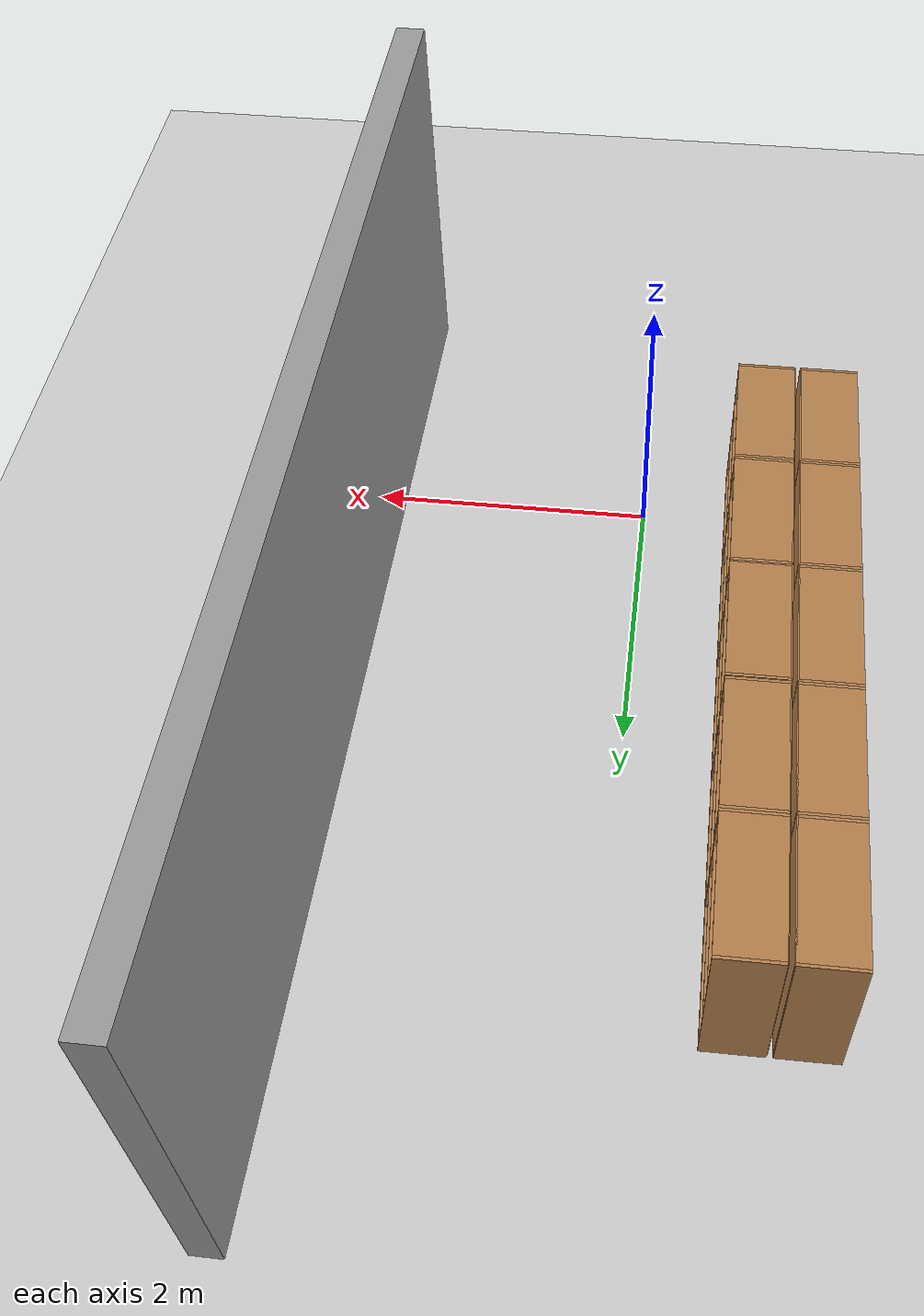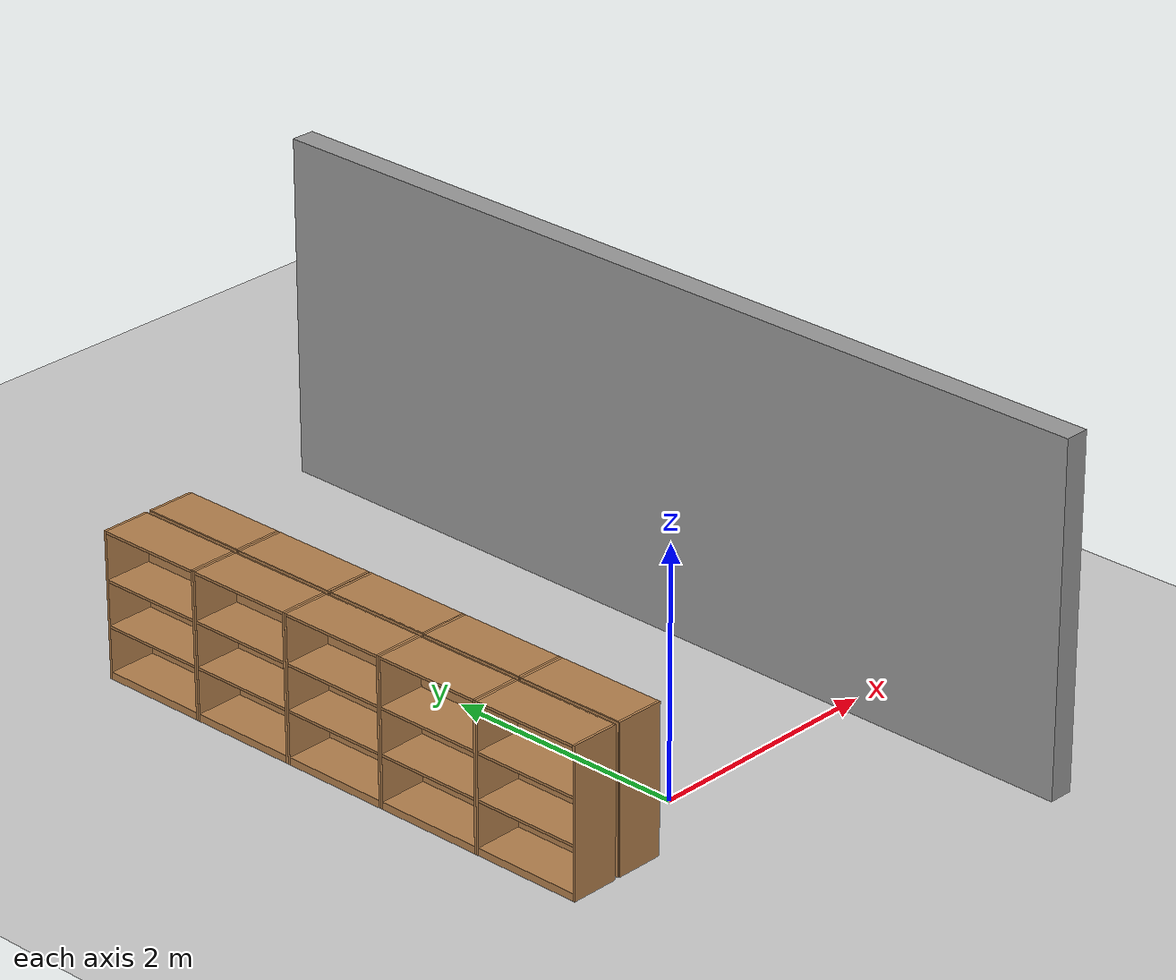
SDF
<sdf version="1.4">
 <world name="default">
  <model name="ground_plane">
   <static>1</static>
   <link name="link">
    <collision name="collision">
     <geometry><plane><normal>0 0 1</normal><size>100 100</size></plane></geometry>
     <surface><friction><ode><mu>100</mu><mu2>50</mu2></ode></friction></surface>
    </collision>
    <visual name="visual">
     <cast_shadows>0</cast_shadows>
     <geometry><plane><normal>0 0 1</normal><size>100 100</size></plane></geometry>
     <material>
      <script><uri>file://media/materials/scripts/gazebo.material</uri><name>Gazebo/Grey</name></script>
     </material>
    </visual>
    <velocity_decay><linear>0</linear><angular>0</angular></velocity_decay>
   </link>
  </model>
  <model name="bookshelf">
   <static>0</static>
   <link name="link">
    <inertial><mass>1</mass></inertial>
    <collision name="back">
     <pose>0 0.005 0.6 0 -0 0</pose>
     <geometry><box><size>0.9 0.01 1.2</size></box></geometry>
    </collision>
    <visual name="visual1">
     <pose>0 0.005 0.6 0 -0 0</pose>
     <geometry><box><size>0.9 0.01 1.2</size></box></geometry>
     <material>
      <script><uri>file://media/materials/scripts/gazebo.material</uri><name>Gazebo/Wood</name></script>
     </material>
    </visual>
    <collision name="left_side">
     <pose>0.45 -0.195 0.6 0 -0 0</pose>
     <geometry><box><size>0.02 0.4 1.2</size></box></geometry>
    </collision>
    <visual name="visual2">
     <pose>0.45 -0.195 0.6 0 -0 0</pose>
     <geometry><box><size>0.02 0.4 1.2</size></box></geometry>
     <material>
      <script><uri>file://media/materials/scripts/gazebo.material</uri><name>Gazebo/Wood</name></script>
     </material>
    </visual>
    <collision name="right_side">
     <pose>-0.45 -0.195 0.6 0 -0 0</pose>
     <geometry><box><size>0.02 0.4 1.2</size></box></geometry>
    </collision>
    <visual name="visual3">
     <pose>-0.45 -0.195 0.6 0 -0 0</pose>
     <geometry><box><size>0.02 0.4 1.2</size></box></geometry>
     <material>
      <script><uri>file://media/materials/scripts/gazebo.material</uri><name>Gazebo/Wood</name></script>
     </material>
    </visual>
    <collision name="bottom">
     <pose>0 -0.195 0.03 0 -0 0</pose>
     <geometry><box><size>0.88 0.4 0.06</size></box></geometry>
    </collision>
    <visual name="visual4">
     <pose>0 -0.195 0.03 0 -0 0</pose>
     <geometry><box><size>0.88 0.4 0.06</size></box></geometry>
     <material>
      <script><uri>file://media/materials/scripts/gazebo.material</uri><name>Gazebo/Wood</name></script>
     </material>
    </visual>
    <collision name="top">
     <pose>0 -0.195 1.19 0 -0 0</pose>
     <geometry><box><size>0.88 0.4 0.02</size></box></geometry>
    </collision>
    <visual name="visual5">
     <pose>0 -0.195 1.19 0 -0 0</pose>
     <geometry><box><size>0.88 0.4 0.02</size></box></geometry>
     <material>
      <script><uri>file://media/materials/scripts/gazebo.material</uri><name>Gazebo/Wood</name></script>
     </material>
    </visual>
    <collision name="low_shelf">
     <pose>0 -0.195 0.43 0 -0 0</pose>
     <geometry><box><size>0.88 0.4 0.02</size></box></geometry>
    </collision>
    <visual name="visual6">
     <pose>0 -0.195 0.43 0 -0 0</pose>
     <geometry><box><size>0.88 0.4 0.02</size></box></geometry>
     <material>
      <script><uri>file://media/materials/scripts/gazebo.material</uri><name>Gazebo/Wood</name></script>
     </material>
    </visual>
    <collision name="high_shelf">
     <pose>0 -0.195 0.8 0 -0 0</pose>
     <geometry><box><size>0.88 0.4 0.02</size></box></geometry>
    </collision>
    <visual name="visual7">
     <pose>0 -0.195 0.8 0 -0 0</pose>
     <geometry><box><size>0.88 0.4 0.02</size></box></geometry>
     <material>
      <script><uri>file://media/materials/scripts/gazebo.material</uri><name>Gazebo/Wood</name></script>
     </material>
    </visual>
    <velocity_decay><linear>0</linear><angular>0</angular></velocity_decay>
   </link>
   <pose>-1 0 0 0 -0 1.5708</pose>
  </model>
  <model name="bookshelf_0">
   <static>1</static>
   <link name="link">
    <inertial><mass>1</mass></inertial>
    <collision name="back">
     <pose>0 0.005 0.6 0 -0 0</pose>
     <geometry><box><size>0.9 0.01 1.2</size></box></geometry>
    </collision>
    <visual name="visual1">
     <pose>0 0.005 0.6 0 -0 0</pose>
     <geometry><box><size>0.9 0.01 1.2</size></box></geometry>
     <material>
      <script><uri>file://media/materials/scripts/gazebo.material</uri><name>Gazebo/Wood</name></script>
     </material>
    </visual>
    <collision name="left_side">
     <pose>0.45 -0.195 0.6 0 -0 0</pose>
     <geometry><box><size>0.02 0.4 1.2</size></box></geometry>
    </collision>
    <visual name="visual2">
     <pose>0.45 -0.195 0.6 0 -0 0</pose>
     <geometry><box><size>0.02 0.4 1.2</size></box></geometry>
     <material>
      <script><uri>file://media/materials/scripts/gazebo.material</uri><name>Gazebo/Wood</name></script>
     </material>
    </visual>
    <collision name="right_side">
     <pose>-0.45 -0.195 0.6 0 -0 0</pose>
     <geometry><box><size>0.02 0.4 1.2</size></box></geometry>
    </collision>
    <visual name="visual3">
     <pose>-0.45 -0.195 0.6 0 -0 0</pose>
     <geometry><box><size>0.02 0.4 1.2</size></box></geometry>
     <material>
      <script><uri>file://media/materials/scripts/gazebo.material</uri><name>Gazebo/Wood</name></script>
     </material>
    </visual>
    <collision name="bottom">
     <pose>0 -0.195 0.03 0 -0 0</pose>
     <geometry><box><size>0.88 0.4 0.06</size></box></geometry>
    </collision>
    <visual name="visual4">
     <pose>0 -0.195 0.03 0 -0 0</pose>
     <geometry><box><size>0.88 0.4 0.06</size></box></geometry>
     <material>
      <script><uri>file://media/materials/scripts/gazebo.material</uri><name>Gazebo/Wood</name></script>
     </material>
    </visual>
    <collision name="top">
     <pose>0 -0.195 1.19 0 -0 0</pose>
     <geometry><box><size>0.88 0.4 0.02</size></box></geometry>
    </collision>
    <visual name="visual5">
     <pose>0 -0.195 1.19 0 -0 0</pose>
     <geometry><box><size>0.88 0.4 0.02</size></box></geometry>
     <material>
      <script><uri>file://media/materials/scripts/gazebo.material</uri><name>Gazebo/Wood</name></script>
     </material>
    </visual>
    <collision name="low_shelf">
     <pose>0 -0.195 0.43 0 -0 0</pose>
     <geometry><box><size>0.88 0.4 0.02</size></box></geometry>
    </collision>
    <visual name="visual6">
     <pose>0 -0.195 0.43 0 -0 0</pose>
     <geometry><box><size>0.88 0.4 0.02</size></box></geometry>
     <material>
      <script><uri>file://media/materials/scripts/gazebo.material</uri><name>Gazebo/Wood</name></script>
     </material>
    </visual>
    <collision name="high_shelf">
     <pose>0 -0.195 0.8 0 -0 0</pose>
     <geometry><box><size>0.88 0.4 0.02</size></box></geometry>
    </collision>
    <visual name="visual7">
     <pose>0 -0.195 0.8 0 -0 0</pose>
     <geometry><box><size>0.88 0.4 0.02</size></box></geometry>
     <material>
      <script><uri>file://media/materials/scripts/gazebo.material</uri><name>Gazebo/Wood</name></script>
     </material>
    </visual>
    <velocity_decay><linear>0</linear><angular>0</angular></velocity_decay>
   </link>
   <pose>-1 0.918842 0 0 -0 1.5708</pose>
  </model>
  <model name="bookshelf_1">
   <static>1</static>
   <link name="link">
    <inertial><mass>1</mass></inertial>
    <collision name="back">
     <pose>0 0.005 0.6 0 -0 0</pose>
     <geometry><box><size>0.9 0.01 1.2</size></box></geometry>
    </collision>
    <visual name="visual1">
     <pose>0 0.005 0.6 0 -0 0</pose>
     <geometry><box><size>0.9 0.01 1.2</size></box></geometry>
     <material>
      <script><uri>file://media/materials/scripts/gazebo.material</uri><name>Gazebo/Wood</name></script>
     </material>
    </visual>
    <collision name="left_side">
     <pose>0.45 -0.195 0.6 0 -0 0</pose>
     <geometry><box><size>0.02 0.4 1.2</size></box></geometry>
    </collision>
    <visual name="visual2">
     <pose>0.45 -0.195 0.6 0 -0 0</pose>
     <geometry><box><size>0.02 0.4 1.2</size></box></geometry>
     <material>
      <script><uri>file://media/materials/scripts/gazebo.material</uri><name>Gazebo/Wood</name></script>
     </material>
    </visual>
    <collision name="right_side">
     <pose>-0.45 -0.195 0.6 0 -0 0</pose>
     <geometry><box><size>0.02 0.4 1.2</size></box></geometry>
    </collision>
    <visual name="visual3">
     <pose>-0.45 -0.195 0.6 0 -0 0</pose>
     <geometry><box><size>0.02 0.4 1.2</size></box></geometry>
     <material>
      <script><uri>file://media/materials/scripts/gazebo.material</uri><name>Gazebo/Wood</name></script>
     </material>
    </visual>
    <collision name="bottom">
     <pose>0 -0.195 0.03 0 -0 0</pose>
     <geometry><box><size>0.88 0.4 0.06</size></box></geometry>
    </collision>
    <visual name="visual4">
     <pose>0 -0.195 0.03 0 -0 0</pose>
     <geometry><box><size>0.88 0.4 0.06</size></box></geometry>
     <material>
      <script><uri>file://media/materials/scripts/gazebo.material</uri><name>Gazebo/Wood</name></script>
     </material>
    </visual>
    <collision name="top">
     <pose>0 -0.195 1.19 0 -0 0</pose>
     <geometry><box><size>0.88 0.4 0.02</size></box></geometry>
    </collision>
    <visual name="visual5">
     <pose>0 -0.195 1.19 0 -0 0</pose>
     <geometry><box><size>0.88 0.4 0.02</size></box></geometry>
     <material>
      <script><uri>file://media/materials/scripts/gazebo.material</uri><name>Gazebo/Wood</name></script>
     </material>
    </visual>
    <collision name="low_shelf">
     <pose>0 -0.195 0.43 0 -0 0</pose>
     <geometry><box><size>0.88 0.4 0.02</size></box></geometry>
    </collision>
    <visual name="visual6">
     <pose>0 -0.195 0.43 0 -0 0</pose>
     <geometry><box><size>0.88 0.4 0.02</size></box></geometry>
     <material>
      <script><uri>file://media/materials/scripts/gazebo.material</uri><name>Gazebo/Wood</name></script>
     </material>
    </visual>
    <collision name="high_shelf">
     <pose>0 -0.195 0.8 0 -0 0</pose>
     <geometry><box><size>0.88 0.4 0.02</size></box></geometry>
    </collision>
    <visual name="visual7">
     <pose>0 -0.195 0.8 0 -0 0</pose>
     <geometry><box><size>0.88 0.4 0.02</size></box></geometry>
     <material>
      <script><uri>file://media/materials/scripts/gazebo.material</uri><name>Gazebo/Wood</name></script>
     </material>
    </visual>
    <velocity_decay><linear>0</linear><angular>0</angular></velocity_decay>
   </link>
   <pose>-1 1.83131 0 0 -0 1.5708</pose>
  </model>
  <model name="bookshelf_10">
   <static>1</static>
   <link name="link">
    <inertial><mass>1</mass></inertial>
    <collision name="back">
     <pose>0 0.005 0.6 0 -0 0</pose>
     <geometry><box><size>0.9 0.01 1.2</size></box></geometry>
    </collision>
    <visual name="visual1">
     <pose>0 0.005 0.6 0 -0 0</pose>
     <geometry><box><size>0.9 0.01 1.2</size></box></geometry>
     <material>
      <script><uri>file://media/materials/scripts/gazebo.material</uri><name>Gazebo/Wood</name></script>
     </material>
    </visual>
    <collision name="left_side">
     <pose>0.45 -0.195 0.6 0 -0 0</pose>
     <geometry><box><size>0.02 0.4 1.2</size></box></geometry>
    </collision>
    <visual name="visual2">
     <pose>0.45 -0.195 0.6 0 -0 0</pose>
     <geometry><box><size>0.02 0.4 1.2</size></box></geometry>
     <material>
      <script><uri>file://media/materials/scripts/gazebo.material</uri><name>Gazebo/Wood</name></script>
     </material>
    </visual>
    <collision name="right_side">
     <pose>-0.45 -0.195 0.6 0 -0 0</pose>
     <geometry><box><size>0.02 0.4 1.2</size></box></geometry>
    </collision>
    <visual name="visual3">
     <pose>-0.45 -0.195 0.6 0 -0 0</pose>
     <geometry><box><size>0.02 0.4 1.2</size></box></geometry>
     <material>
      <script><uri>file://media/materials/scripts/gazebo.material</uri><name>Gazebo/Wood</name></script>
     </material>
    </visual>
    <collision name="bottom">
     <pose>0 -0.195 0.03 0 -0 0</pose>
     <geometry><box><size>0.88 0.4 0.06</size></box></geometry>
    </collision>
    <visual name="visual4">
     <pose>0 -0.195 0.03 0 -0 0</pose>
     <geometry><box><size>0.88 0.4 0.06</size></box></geometry>
     <material>
      <script><uri>file://media/materials/scripts/gazebo.material</uri><name>Gazebo/Wood</name></script>
     </material>
    </visual>
    <collision name="top">
     <pose>0 -0.195 1.19 0 -0 0</pose>
     <geometry><box><size>0.88 0.4 0.02</size></box></geometry>
    </collision>
    <visual name="visual5">
     <pose>0 -0.195 1.19 0 -0 0</pose>
     <geometry><box><size>0.88 0.4 0.02</size></box></geometry>
     <material>
      <script><uri>file://media/materials/scripts/gazebo.material</uri><name>Gazebo/Wood</name></script>
     </material>
    </visual>
    <collision name="low_shelf">
     <pose>0 -0.195 0.43 0 -0 0</pose>
     <geometry><box><size>0.88 0.4 0.02</size></box></geometry>
    </collision>
    <visual name="visual6">
     <pose>0 -0.195 0.43 0 -0 0</pose>
     <geometry><box><size>0.88 0.4 0.02</size></box></geometry>
     <material>
      <script><uri>file://media/materials/scripts/gazebo.material</uri><name>Gazebo/Wood</name></script>
     </material>
    </visual>
    <collision name="high_shelf">
     <pose>0 -0.195 0.8 0 -0 0</pose>
     <geometry><box><size>0.88 0.4 0.02</size></box></geometry>
    </collision>
    <visual name="visual7">
     <pose>0 -0.195 0.8 0 -0 0</pose>
     <geometry><box><size>0.88 0.4 0.02</size></box></geometry>
     <material>
      <script><uri>file://media/materials/scripts/gazebo.material</uri><name>Gazebo/Wood</name></script>
     </material>
    </visual>
    <velocity_decay><linear>0</linear><angular>0</angular></velocity_decay>
   </link>
   <pose>-1 2.7564 0 0 -0 1.5708</pose>
  </model>
  <model name="bookshelf_11">
   <static>1</static>
   <link name="link">
    <inertial><mass>1</mass></inertial>
    <collision name="back">
     <pose>0 0.005 0.6 0 -0 0</pose>
     <geometry><box><size>0.9 0.01 1.2</size></box></geometry>
    </collision>
    <visual name="visual1">
     <pose>0 0.005 0.6 0 -0 0</pose>
     <geometry><box><size>0.9 0.01 1.2</size></box></geometry>
     <material>
      <script><uri>file://media/materials/scripts/gazebo.material</uri><name>Gazebo/Wood</name></script>
     </material>
    </visual>
    <collision name="left_side">
     <pose>0.45 -0.195 0.6 0 -0 0</pose>
     <geometry><box><size>0.02 0.4 1.2</size></box></geometry>
    </collision>
    <visual name="visual2">
     <pose>0.45 -0.195 0.6 0 -0 0</pose>
     <geometry><box><size>0.02 0.4 1.2</size></box></geometry>
     <material>
      <script><uri>file://media/materials/scripts/gazebo.material</uri><name>Gazebo/Wood</name></script>
     </material>
    </visual>
    <collision name="right_side">
     <pose>-0.45 -0.195 0.6 0 -0 0</pose>
     <geometry><box><size>0.02 0.4 1.2</size></box></geometry>
    </collision>
    <visual name="visual3">
     <pose>-0.45 -0.195 0.6 0 -0 0</pose>
     <geometry><box><size>0.02 0.4 1.2</size></box></geometry>
     <material>
      <script><uri>file://media/materials/scripts/gazebo.material</uri><name>Gazebo/Wood</name></script>
     </material>
    </visual>
    <collision name="bottom">
     <pose>0 -0.195 0.03 0 -0 0</pose>
     <geometry><box><size>0.88 0.4 0.06</size></box></geometry>
    </collision>
    <visual name="visual4">
     <pose>0 -0.195 0.03 0 -0 0</pose>
     <geometry><box><size>0.88 0.4 0.06</size></box></geometry>
     <material>
      <script><uri>file://media/materials/scripts/gazebo.material</uri><name>Gazebo/Wood</name></script>
     </material>
    </visual>
    <collision name="top">
     <pose>0 -0.195 1.19 0 -0 0</pose>
     <geometry><box><size>0.88 0.4 0.02</size></box></geometry>
    </collision>
    <visual name="visual5">
     <pose>0 -0.195 1.19 0 -0 0</pose>
     <geometry><box><size>0.88 0.4 0.02</size></box></geometry>
     <material>
      <script><uri>file://media/materials/scripts/gazebo.material</uri><name>Gazebo/Wood</name></script>
     </material>
    </visual>
    <collision name="low_shelf">
     <pose>0 -0.195 0.43 0 -0 0</pose>
     <geometry><box><size>0.88 0.4 0.02</size></box></geometry>
    </collision>
    <visual name="visual6">
     <pose>0 -0.195 0.43 0 -0 0</pose>
     <geometry><box><size>0.88 0.4 0.02</size></box></geometry>
     <material>
      <script><uri>file://media/materials/scripts/gazebo.material</uri><name>Gazebo/Wood</name></script>
     </material>
    </visual>
    <collision name="high_shelf">
     <pose>0 -0.195 0.8 0 -0 0</pose>
     <geometry><box><size>0.88 0.4 0.02</size></box></geometry>
    </collision>
    <visual name="visual7">
     <pose>0 -0.195 0.8 0 -0 0</pose>
     <geometry><box><size>0.88 0.4 0.02</size></box></geometry>
     <material>
      <script><uri>file://media/materials/scripts/gazebo.material</uri><name>Gazebo/Wood</name></script>
     </material>
    </visual>
    <velocity_decay><linear>0</linear><angular>0</angular></velocity_decay>
   </link>
   <pose>-1 3.6752 0 0 -0 1.5708</pose>
  </model>
  <model name="bookshelf_12">
   <static>1</static>
   <link name="link">
    <inertial><mass>1</mass></inertial>
    <collision name="back">
     <pose>0 0.005 0.6 0 -0 0</pose>
     <geometry><box><size>0.9 0.01 1.2</size></box></geometry>
    </collision>
    <visual name="visual1">
     <pose>0 0.005 0.6 0 -0 0</pose>
     <geometry><box><size>0.9 0.01 1.2</size></box></geometry>
     <material>
      <script><uri>file://media/materials/scripts/gazebo.material</uri><name>Gazebo/Wood</name></script>
     </material>
    </visual>
    <collision name="left_side">
     <pose>0.45 -0.195 0.6 0 -0 0</pose>
     <geometry><box><size>0.02 0.4 1.2</size></box></geometry>
    </collision>
    <visual name="visual2">
     <pose>0.45 -0.195 0.6 0 -0 0</pose>
     <geometry><box><size>0.02 0.4 1.2</size></box></geometry>
     <material>
      <script><uri>file://media/materials/scripts/gazebo.material</uri><name>Gazebo/Wood</name></script>
     </material>
    </visual>
    <collision name="right_side">
     <pose>-0.45 -0.195 0.6 0 -0 0</pose>
     <geometry><box><size>0.02 0.4 1.2</size></box></geometry>
    </collision>
    <visual name="visual3">
     <pose>-0.45 -0.195 0.6 0 -0 0</pose>
     <geometry><box><size>0.02 0.4 1.2</size></box></geometry>
     <material>
      <script><uri>file://media/materials/scripts/gazebo.material</uri><name>Gazebo/Wood</name></script>
     </material>
    </visual>
    <collision name="bottom">
     <pose>0 -0.195 0.03 0 -0 0</pose>
     <geometry><box><size>0.88 0.4 0.06</size></box></geometry>
    </collision>
    <visual name="visual4">
     <pose>0 -0.195 0.03 0 -0 0</pose>
     <geometry><box><size>0.88 0.4 0.06</size></box></geometry>
     <material>
      <script><uri>file://media/materials/scripts/gazebo.material</uri><name>Gazebo/Wood</name></script>
     </material>
    </visual>
    <collision name="top">
     <pose>0 -0.195 1.19 0 -0 0</pose>
     <geometry><box><size>0.88 0.4 0.02</size></box></geometry>
    </collision>
    <visual name="visual5">
     <pose>0 -0.195 1.19 0 -0 0</pose>
     <geometry><box><size>0.88 0.4 0.02</size></box></geometry>
     <material>
      <script><uri>file://media/materials/scripts/gazebo.material</uri><name>Gazebo/Wood</name></script>
     </material>
    </visual>
    <collision name="low_shelf">
     <pose>0 -0.195 0.43 0 -0 0</pose>
     <geometry><box><size>0.88 0.4 0.02</size></box></geometry>
    </collision>
    <visual name="visual6">
     <pose>0 -0.195 0.43 0 -0 0</pose>
     <geometry><box><size>0.88 0.4 0.02</size></box></geometry>
     <material>
      <script><uri>file://media/materials/scripts/gazebo.material</uri><name>Gazebo/Wood</name></script>
     </material>
    </visual>
    <collision name="high_shelf">
     <pose>0 -0.195 0.8 0 -0 0</pose>
     <geometry><box><size>0.88 0.4 0.02</size></box></geometry>
    </collision>
    <visual name="visual7">
     <pose>0 -0.195 0.8 0 -0 0</pose>
     <geometry><box><size>0.88 0.4 0.02</size></box></geometry>
     <material>
      <script><uri>file://media/materials/scripts/gazebo.material</uri><name>Gazebo/Wood</name></script>
     </material>
    </visual>
    <velocity_decay><linear>0</linear><angular>0</angular></velocity_decay>
   </link>
   <pose>-1.04916 0 0 0 0 -1.5708</pose>
  </model>
  <model name="bookshelf_13">
   <static>1</static>
   <link name="link">
    <inertial><mass>1</mass></inertial>
    <collision name="back">
     <pose>0 0.005 0.6 0 -0 0</pose>
     <geometry><box><size>0.9 0.01 1.2</size></box></geometry>
    </collision>
    <visual name="visual1">
     <pose>0 0.005 0.6 0 -0 0</pose>
     <geometry><box><size>0.9 0.01 1.2</size></box></geometry>
     <material>
      <script><uri>file://media/materials/scripts/gazebo.material</uri><name>Gazebo/Wood</name></script>
     </material>
    </visual>
    <collision name="left_side">
     <pose>0.45 -0.195 0.6 0 -0 0</pose>
     <geometry><box><size>0.02 0.4 1.2</size></box></geometry>
    </collision>
    <visual name="visual2">
     <pose>0.45 -0.195 0.6 0 -0 0</pose>
     <geometry><box><size>0.02 0.4 1.2</size></box></geometry>
     <material>
      <script><uri>file://media/materials/scripts/gazebo.material</uri><name>Gazebo/Wood</name></script>
     </material>
    </visual>
    <collision name="right_side">
     <pose>-0.45 -0.195 0.6 0 -0 0</pose>
     <geometry><box><size>0.02 0.4 1.2</size></box></geometry>
    </collision>
    <visual name="visual3">
     <pose>-0.45 -0.195 0.6 0 -0 0</pose>
     <geometry><box><size>0.02 0.4 1.2</size></box></geometry>
     <material>
      <script><uri>file://media/materials/scripts/gazebo.material</uri><name>Gazebo/Wood</name></script>
     </material>
    </visual>
    <collision name="bottom">
     <pose>0 -0.195 0.03 0 -0 0</pose>
     <geometry><box><size>0.88 0.4 0.06</size></box></geometry>
    </collision>
    <visual name="visual4">
     <pose>0 -0.195 0.03 0 -0 0</pose>
     <geometry><box><size>0.88 0.4 0.06</size></box></geometry>
     <material>
      <script><uri>file://media/materials/scripts/gazebo.material</uri><name>Gazebo/Wood</name></script>
     </material>
    </visual>
    <collision name="top">
     <pose>0 -0.195 1.19 0 -0 0</pose>
     <geometry><box><size>0.88 0.4 0.02</size></box></geometry>
    </collision>
    <visual name="visual5">
     <pose>0 -0.195 1.19 0 -0 0</pose>
     <geometry><box><size>0.88 0.4 0.02</size></box></geometry>
     <material>
      <script><uri>file://media/materials/scripts/gazebo.material</uri><name>Gazebo/Wood</name></script>
     </material>
    </visual>
    <collision name="low_shelf">
     <pose>0 -0.195 0.43 0 -0 0</pose>
     <geometry><box><size>0.88 0.4 0.02</size></box></geometry>
    </collision>
    <visual name="visual6">
     <pose>0 -0.195 0.43 0 -0 0</pose>
     <geometry><box><size>0.88 0.4 0.02</size></box></geometry>
     <material>
      <script><uri>file://media/materials/scripts/gazebo.material</uri><name>Gazebo/Wood</name></script>
     </material>
    </visual>
    <collision name="high_shelf">
     <pose>0 -0.195 0.8 0 -0 0</pose>
     <geometry><box><size>0.88 0.4 0.02</size></box></geometry>
    </collision>
    <visual name="visual7">
     <pose>0 -0.195 0.8 0 -0 0</pose>
     <geometry><box><size>0.88 0.4 0.02</size></box></geometry>
     <material>
      <script><uri>file://media/materials/scripts/gazebo.material</uri><name>Gazebo/Wood</name></script>
     </material>
    </visual>
    <velocity_decay><linear>0</linear><angular>0</angular></velocity_decay>
   </link>
   <pose>-1.04916 0.9188 0 0 0 -1.5708</pose>
  </model>
  <model name="bookshelf_14">
   <static>1</static>
   <link name="link">
    <inertial><mass>1</mass></inertial>
    <collision name="back">
     <pose>0 0.005 0.6 0 -0 0</pose>
     <geometry><box><size>0.9 0.01 1.2</size></box></geometry>
    </collision>
    <visual name="visual1">
     <pose>0 0.005 0.6 0 -0 0</pose>
     <geometry><box><size>0.9 0.01 1.2</size></box></geometry>
     <material>
      <script><uri>file://media/materials/scripts/gazebo.material</uri><name>Gazebo/Wood</name></script>
     </material>
    </visual>
    <collision name="left_side">
     <pose>0.45 -0.195 0.6 0 -0 0</pose>
     <geometry><box><size>0.02 0.4 1.2</size></box></geometry>
    </collision>
    <visual name="visual2">
     <pose>0.45 -0.195 0.6 0 -0 0</pose>
     <geometry><box><size>0.02 0.4 1.2</size></box></geometry>
     <material>
      <script><uri>file://media/materials/scripts/gazebo.material</uri><name>Gazebo/Wood</name></script>
     </material>
    </visual>
    <collision name="right_side">
     <pose>-0.45 -0.195 0.6 0 -0 0</pose>
     <geometry><box><size>0.02 0.4 1.2</size></box></geometry>
    </collision>
    <visual name="visual3">
     <pose>-0.45 -0.195 0.6 0 -0 0</pose>
     <geometry><box><size>0.02 0.4 1.2</size></box></geometry>
     <material>
      <script><uri>file://media/materials/scripts/gazebo.material</uri><name>Gazebo/Wood</name></script>
     </material>
    </visual>
    <collision name="bottom">
     <pose>0 -0.195 0.03 0 -0 0</pose>
     <geometry><box><size>0.88 0.4 0.06</size></box></geometry>
    </collision>
    <visual name="visual4">
     <pose>0 -0.195 0.03 0 -0 0</pose>
     <geometry><box><size>0.88 0.4 0.06</size></box></geometry>
     <material>
      <script><uri>file://media/materials/scripts/gazebo.material</uri><name>Gazebo/Wood</name></script>
     </material>
    </visual>
    <collision name="top">
     <pose>0 -0.195 1.19 0 -0 0</pose>
     <geometry><box><size>0.88 0.4 0.02</size></box></geometry>
    </collision>
    <visual name="visual5">
     <pose>0 -0.195 1.19 0 -0 0</pose>
     <geometry><box><size>0.88 0.4 0.02</size></box></geometry>
     <material>
      <script><uri>file://media/materials/scripts/gazebo.material</uri><name>Gazebo/Wood</name></script>
     </material>
    </visual>
    <collision name="low_shelf">
     <pose>0 -0.195 0.43 0 -0 0</pose>
     <geometry><box><size>0.88 0.4 0.02</size></box></geometry>
    </collision>
    <visual name="visual6">
     <pose>0 -0.195 0.43 0 -0 0</pose>
     <geometry><box><size>0.88 0.4 0.02</size></box></geometry>
     <material>
      <script><uri>file://media/materials/scripts/gazebo.material</uri><name>Gazebo/Wood</name></script>
     </material>
    </visual>
    <collision name="high_shelf">
     <pose>0 -0.195 0.8 0 -0 0</pose>
     <geometry><box><size>0.88 0.4 0.02</size></box></geometry>
    </collision>
    <visual name="visual7">
     <pose>0 -0.195 0.8 0 -0 0</pose>
     <geometry><box><size>0.88 0.4 0.02</size></box></geometry>
     <material>
      <script><uri>file://media/materials/scripts/gazebo.material</uri><name>Gazebo/Wood</name></script>
     </material>
    </visual>
    <velocity_decay><linear>0</linear><angular>0</angular></velocity_decay>
   </link>
   <pose>-1.04916 1.8376 0 0 0 -1.5708</pose>
  </model>
  <model name="bookshelf_15">
   <static>1</static>
   <link name="link">
    <inertial><mass>1</mass></inertial>
    <collision name="back">
     <pose>0 0.005 0.6 0 -0 0</pose>
     <geometry><box><size>0.9 0.01 1.2</size></box></geometry>
    </collision>
    <visual name="visual1">
     <pose>0 0.005 0.6 0 -0 0</pose>
     <geometry><box><size>0.9 0.01 1.2</size></box></geometry>
     <material>
      <script><uri>file://media/materials/scripts/gazebo.material</uri><name>Gazebo/Wood</name></script>
     </material>
    </visual>
    <collision name="left_side">
     <pose>0.45 -0.195 0.6 0 -0 0</pose>
     <geometry><box><size>0.02 0.4 1.2</size></box></geometry>
    </collision>
    <visual name="visual2">
     <pose>0.45 -0.195 0.6 0 -0 0</pose>
     <geometry><box><size>0.02 0.4 1.2</size></box></geometry>
     <material>
      <script><uri>file://media/materials/scripts/gazebo.material</uri><name>Gazebo/Wood</name></script>
     </material>
    </visual>
    <collision name="right_side">
     <pose>-0.45 -0.195 0.6 0 -0 0</pose>
     <geometry><box><size>0.02 0.4 1.2</size></box></geometry>
    </collision>
    <visual name="visual3">
     <pose>-0.45 -0.195 0.6 0 -0 0</pose>
     <geometry><box><size>0.02 0.4 1.2</size></box></geometry>
     <material>
      <script><uri>file://media/materials/scripts/gazebo.material</uri><name>Gazebo/Wood</name></script>
     </material>
    </visual>
    <collision name="bottom">
     <pose>0 -0.195 0.03 0 -0 0</pose>
     <geometry><box><size>0.88 0.4 0.06</size></box></geometry>
    </collision>
    <visual name="visual4">
     <pose>0 -0.195 0.03 0 -0 0</pose>
     <geometry><box><size>0.88 0.4 0.06</size></box></geometry>
     <material>
      <script><uri>file://media/materials/scripts/gazebo.material</uri><name>Gazebo/Wood</name></script>
     </material>
    </visual>
    <collision name="top">
     <pose>0 -0.195 1.19 0 -0 0</pose>
     <geometry><box><size>0.88 0.4 0.02</size></box></geometry>
    </collision>
    <visual name="visual5">
     <pose>0 -0.195 1.19 0 -0 0</pose>
     <geometry><box><size>0.88 0.4 0.02</size></box></geometry>
     <material>
      <script><uri>file://media/materials/scripts/gazebo.material</uri><name>Gazebo/Wood</name></script>
     </material>
    </visual>
    <collision name="low_shelf">
     <pose>0 -0.195 0.43 0 -0 0</pose>
     <geometry><box><size>0.88 0.4 0.02</size></box></geometry>
    </collision>
    <visual name="visual6">
     <pose>0 -0.195 0.43 0 -0 0</pose>
     <geometry><box><size>0.88 0.4 0.02</size></box></geometry>
     <material>
      <script><uri>file://media/materials/scripts/gazebo.material</uri><name>Gazebo/Wood</name></script>
     </material>
    </visual>
    <collision name="high_shelf">
     <pose>0 -0.195 0.8 0 -0 0</pose>
     <geometry><box><size>0.88 0.4 0.02</size></box></geometry>
    </collision>
    <visual name="visual7">
     <pose>0 -0.195 0.8 0 -0 0</pose>
     <geometry><box><size>0.88 0.4 0.02</size></box></geometry>
     <material>
      <script><uri>file://media/materials/scripts/gazebo.material</uri><name>Gazebo/Wood</name></script>
     </material>
    </visual>
    <velocity_decay><linear>0</linear><angular>0</angular></velocity_decay>
   </link>
   <pose>-1.04916 2.7564 0 0 0 -1.5708</pose>
  </model>
  <model name="bookshelf_16">
   <static>1</static>
   <link name="link">
    <inertial><mass>1</mass></inertial>
    <collision name="back">
     <pose>0 0.005 0.6 0 -0 0</pose>
     <geometry><box><size>0.9 0.01 1.2</size></box></geometry>
    </collision>
    <visual name="visual1">
     <pose>0 0.005 0.6 0 -0 0</pose>
     <geometry><box><size>0.9 0.01 1.2</size></box></geometry>
     <material>
      <script><uri>file://media/materials/scripts/gazebo.material</uri><name>Gazebo/Wood</name></script>
     </material>
    </visual>
    <collision name="left_side">
     <pose>0.45 -0.195 0.6 0 -0 0</pose>
     <geometry><box><size>0.02 0.4 1.2</size></box></geometry>
    </collision>
    <visual name="visual2">
     <pose>0.45 -0.195 0.6 0 -0 0</pose>
     <geometry><box><size>0.02 0.4 1.2</size></box></geometry>
     <material>
      <script><uri>file://media/materials/scripts/gazebo.material</uri><name>Gazebo/Wood</name></script>
     </material>
    </visual>
    <collision name="right_side">
     <pose>-0.45 -0.195 0.6 0 -0 0</pose>
     <geometry><box><size>0.02 0.4 1.2</size></box></geometry>
    </collision>
    <visual name="visual3">
     <pose>-0.45 -0.195 0.6 0 -0 0</pose>
     <geometry><box><size>0.02 0.4 1.2</size></box></geometry>
     <material>
      <script><uri>file://media/materials/scripts/gazebo.material</uri><name>Gazebo/Wood</name></script>
     </material>
    </visual>
    <collision name="bottom">
     <pose>0 -0.195 0.03 0 -0 0</pose>
     <geometry><box><size>0.88 0.4 0.06</size></box></geometry>
    </collision>
    <visual name="visual4">
     <pose>0 -0.195 0.03 0 -0 0</pose>
     <geometry><box><size>0.88 0.4 0.06</size></box></geometry>
     <material>
      <script><uri>file://media/materials/scripts/gazebo.material</uri><name>Gazebo/Wood</name></script>
     </material>
    </visual>
    <collision name="top">
     <pose>0 -0.195 1.19 0 -0 0</pose>
     <geometry><box><size>0.88 0.4 0.02</size></box></geometry>
    </collision>
    <visual name="visual5">
     <pose>0 -0.195 1.19 0 -0 0</pose>
     <geometry><box><size>0.88 0.4 0.02</size></box></geometry>
     <material>
      <script><uri>file://media/materials/scripts/gazebo.material</uri><name>Gazebo/Wood</name></script>
     </material>
    </visual>
    <collision name="low_shelf">
     <pose>0 -0.195 0.43 0 -0 0</pose>
     <geometry><box><size>0.88 0.4 0.02</size></box></geometry>
    </collision>
    <visual name="visual6">
     <pose>0 -0.195 0.43 0 -0 0</pose>
     <geometry><box><size>0.88 0.4 0.02</size></box></geometry>
     <material>
      <script><uri>file://media/materials/scripts/gazebo.material</uri><name>Gazebo/Wood</name></script>
     </material>
    </visual>
    <collision name="high_shelf">
     <pose>0 -0.195 0.8 0 -0 0</pose>
     <geometry><box><size>0.88 0.4 0.02</size></box></geometry>
    </collision>
    <visual name="visual7">
     <pose>0 -0.195 0.8 0 -0 0</pose>
     <geometry><box><size>0.88 0.4 0.02</size></box></geometry>
     <material>
      <script><uri>file://media/materials/scripts/gazebo.material</uri><name>Gazebo/Wood</name></script>
     </material>
    </visual>
    <velocity_decay><linear>0</linear><angular>0</angular></velocity_decay>
   </link>
   <pose>-1.04916 3.6752 0 0 0 -1.5708</pose>
  </model>
  <model name="unit_box_1_0">
   <pose>-0.75863 3.77498 0.92065 -5e-06 2e-06 4.3e-05</pose>
   <link name="link">
    <inertial>
     <mass>1</mass>
     <inertia><ixx>1</ixx><ixy>0</ixy><ixz>0</ixz><iyy>1</iyy><iyz>0</iyz><izz>1</izz></inertia>
    </inertial>
    <collision name="collision">
     <geometry><box><size>0.221299 0.221299 0.221299</size></box></geometry>
    </collision>
    <visual name="visual">
     <geometry><box><size>0.2 0.2 0.2</size></box></geometry>
     <material>
      <script><uri>file://media/materials/scripts/gazebo.material</uri><name>Gazebo/WoodPallet</name></script>
     </material>
    </visual>
    <velocity_decay><linear>0</linear><angular>0</angular></velocity_decay>
   </link>
   <static>0</static>
  </model>
  <model name="grey_wall_1">
   <static>1</static>
   <link name="link">
    <pose>0 0 1.4 0 -0 0</pose>
    <collision name="collision"><geometry><box><size>7.5 0.2 2.8</size></box></geometry></collision>
    <visual name="visual">
     <cast_shadows>0</cast_shadows>
     <geometry><box><size>7.5 0.2 2.8</size></box></geometry>
     <material>
      <script>
       <uri>model://grey_wall/materials/scripts</uri>
       <uri>model://grey_wall/materials/textures</uri>
       <name>vrc/grey_wall</name>
      </script>
     </material>
    </visual>
    <velocity_decay><linear>0</linear><angular>0</angular></velocity_decay>
   </link>
   <pose>1.92533 1.79545 -0 0 -0 1.562</pose>
  </model>
  <model name="unit_box_1">
   <pose>-0.733498 1.60152 0.914197 -1e-06 -2e-06 1.6e-05</pose>
   <link name="link">
    <inertial>
     <mass>1</mass>
     <inertia><ixx>1</ixx><ixy>0</ixy><ixz>0</ixz><iyy>1</iyy><iyz>0</iyz><izz>1</izz></inertia>
    </inertial>
    <collision name="collision">
     <geometry><box><size>0.231389 0.231389 0.231389</size></box></geometry>
    </collision>
    <visual name="visual">
     <geometry><box><size>0.2 0.2 0.2</size></box></geometry>
     <material>
      <script><uri>file://media/materials/scripts/gazebo.material</uri><name>Gazebo/WoodPallet</name></script>
     </material>
    </visual>
    <velocity_decay><linear>0</linear><angular>0</angular></velocity_decay>
   </link>
   <static>0</static>
  </model>
  <model name="unit_box_4">
   <pose>-0.747918 0.812974 0.91 -2e-06 -1.07048e-27 -6e-06</pose>
   <link name="link">
    <inertial>
     <mass>1</mass>
     <inertia><ixx>1</ixx><ixy>0</ixy><ixz>0</ixz><iyy>1</iyy><iyz>0</iyz><izz>1</izz></inertia>
    </inertial>
    <collision name="collision"><geometry><box><size>0.2 0.2 0.2</size></box></geometry></collision>
    <visual name="visual">
     <geometry><box><size>0.2 0.2 0.2</size></box></geometry>
     <material>
      <script><uri>file://media/materials/scripts/gazebo.material</uri><name>Gazebo/WoodPallet</name></script>
     </material>
    </visual>
    <velocity_decay><linear>0</linear><angular>0</angular></velocity_decay>
   </link>
   <static>0</static>
  </model>
  <model name="unit_box_6">
   <pose>-0.736849 3.03267 0.54 -2e-06 -3.49465e-28 -1.3e-05</pose>
   <link name="link">
    <inertial>
     <mass>1</mass>
     <inertia><ixx>1</ixx><ixy>0</ixy><ixz>0</ixz><iyy>1</iyy><iyz>0</iyz><izz>1</izz></inertia>
    </inertial>
    <collision name="collision"><geometry><box><size>0.2 0.2 0.2</size></box></geometry></collision>
    <visual name="visual">
     <geometry><box><size>0.2 0.2 0.2</size></box></geometry>
     <material>
      <script><uri>file://media/materials/scripts/gazebo.material</uri><name>Gazebo/WoodPallet</name></script>
     </material>
    </visual>
    <velocity_decay><linear>0</linear><angular>0</angular></velocity_decay>
   </link>
   <static>0</static>
  </model>
  <model name="unit_box_8">
   <pose>-0.771681 0.181182 0.91 1e-06 -1e-06 -3e-06</pose>
   <link name="link">
    <inertial>
     <mass>1</mass>
     <inertia><ixx>1</ixx><ixy>0</ixy><ixz>0</ixz><iyy>1</iyy><iyz>0</iyz><izz>1</izz></inertia>
    </inertial>
    <collision name="collision"><geometry><box><size>0.2 0.2 0.2</size></box></geometry></collision>
    <visual name="visual">
     <geometry><box><size>0.2 0.2 0.2</size></box></geometry>
     <material>
      <script><uri>file://media/materials/scripts/gazebo.material</uri><name>Gazebo/WoodPallet</name></script>
     </material>
    </visual>
    <velocity_decay><linear>0</linear><angular>0</angular></velocity_decay>
   </link>
   <static>0</static>
  </model>
  <model name="unit_box_9">
   <pose>-0.720627 1.78079 0.54 3e-06 -5.01617e-28 -1e-06</pose>
   <link name="link">
    <inertial>
     <mass>1</mass>
     <inertia><ixx>1</ixx><ixy>0</ixy><ixz>0</ixz><iyy>1</iyy><iyz>0</iyz><izz>1</izz></inertia>
    </inertial>
    <collision name="collision"><geometry><box><size>0.2 0.2 0.2</size></box></geometry></collision>
    <visual name="visual">
     <geometry><box><size>0.2 0.2 0.2</size></box></geometry>
     <material>
      <script><uri>file://media/materials/scripts/gazebo.material</uri><name>Gazebo/WoodPallet</name></script>
     </material>
    </visual>
    <velocity_decay><linear>0</linear><angular>0</angular></velocity_decay>
   </link>
   <static>0</static>
  </model>
  <model name="unit_box_10">
   <pose>-0.734563 0.975349 0.16 4e-06 3.44732e-28 -5e-06</pose>
   <link name="link">
    <inertial>
     <mass>1</mass>
     <inertia><ixx>1</ixx><ixy>0</ixy><ixz>0</ixz><iyy>1</iyy><iyz>0</iyz><izz>1</izz></inertia>
    </inertial>
    <collision name="collision"><geometry><box><size>0.2 0.2 0.2</size></box></geometry></collision>
    <visual name="visual">
     <geometry><box><size>0.2 0.2 0.2</size></box></geometry>
     <material>
      <script><uri>file://media/materials/scripts/gazebo.material</uri><name>Gazebo/WoodPallet</name></script>
     </material>
    </visual>
    <velocity_decay><linear>0</linear><angular>0</angular></velocity_decay>
   </link>
   <static>0</static>
  </model>
 </world>
</sdf>
